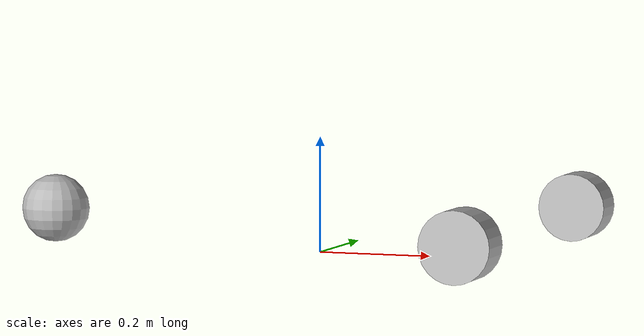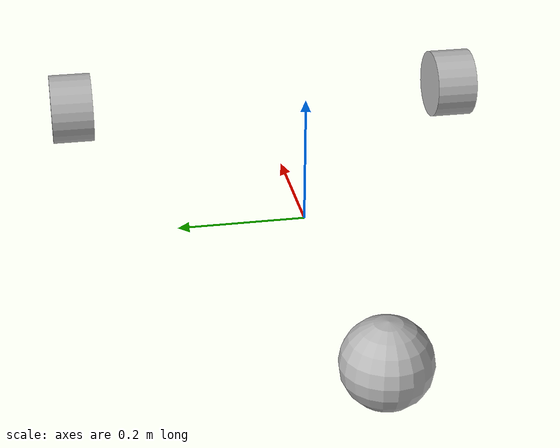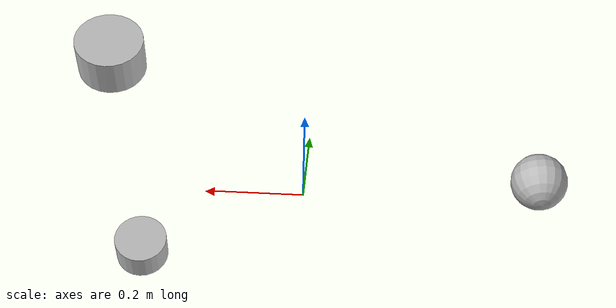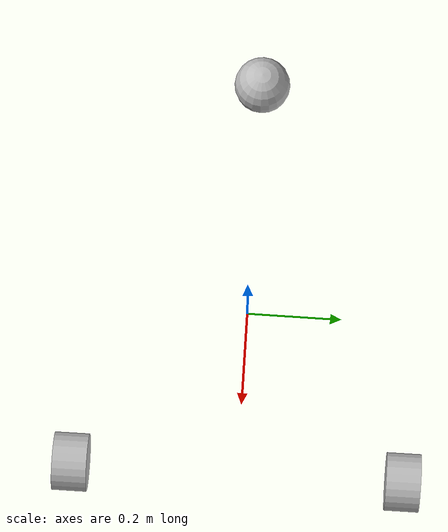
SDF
<?xml version="1.0" ?>
<sdf version="1.7">
    <model name="torus_cart_wheels">
        <link name="left_wheel">
            <pose>0.362570 0.343895 0.06 1.5707 -0 0</pose>
            <gravity>0</gravity>

            <inertial>
                <inertia>
                    <ixx>0.00224878</ixx>
                    <ixy>0</ixy>
                    <ixz>0</ixz>
                    <iyy>0.00224878</iyy>
                    <iyz>0</iyz>
                    <izz>0.00364675</izz>
                </inertia>
            </inertial>

            <visual name="visual_left_wheel">
                <cast_shadows>0</cast_shadows>

                <geometry>
                    <cylinder>
                        <radius>0.06</radius>
                        <length>0.071448</length>
                    </cylinder>
                </geometry>
            </visual>

            <collision name="collision_left_wheel">
                <geometry>
                    <cylinder>
                        <radius>0.06</radius>
                        <length>0.071448</length>
                    </cylinder>
                </geometry>
            </collision>
        </link>

        <link name="right_wheel">
            <pose>0.362570 -0.343895 0.06 1.5707 -0 0</pose>
            <gravity>0</gravity>

            <inertial>
                <inertia>
                    <ixx>0.00224878</ixx>
                    <ixy>0</ixy>
                    <ixz>0</ixz>
                    <iyy>0.00224878</iyy>
                    <iyz>0</iyz>
                    <izz>0.00364675</izz>
                </inertia>
            </inertial>

            <visual name="visual_right_wheel">
                <cast_shadows>0</cast_shadows>

                <geometry>
                    <cylinder>
                        <radius>0.06</radius>
                        <length>0.071448</length>
                    </cylinder>
                </geometry>
            </visual>

            <collision name="collision_right_wheel">
                <geometry>
                    <cylinder>
                        <radius>0.06</radius>
                        <length>0.071448</length>
                    </cylinder>
                </geometry>
            </collision>
        </link>

        <link name="rear_wheel">
            <pose>-0.5 0 0.06 0 -0 0</pose>
            <gravity>0</gravity>

            <visual name="visual_rear_wheel">
                <cast_shadows>0</cast_shadows>

                <geometry>
                    <sphere>
                        <radius>0.06</radius>
                    </sphere>
                </geometry>
            </visual>

            <collision name="collision_rear_wheel">
                <geometry>
                    <sphere>
                        <radius>0.06</radius>
                    </sphere>
                </geometry>
            </collision>
        </link>
    </model>
</sdf>
